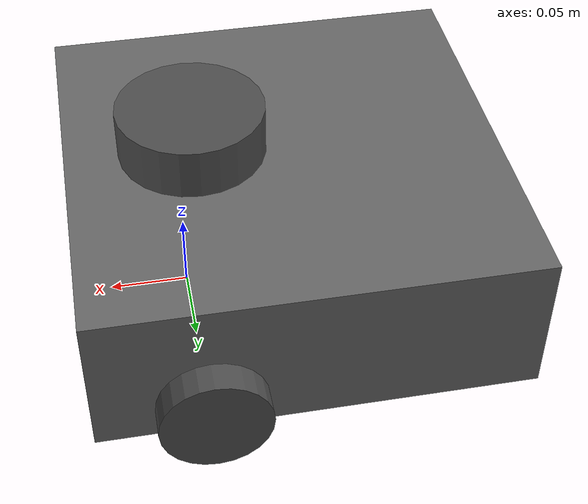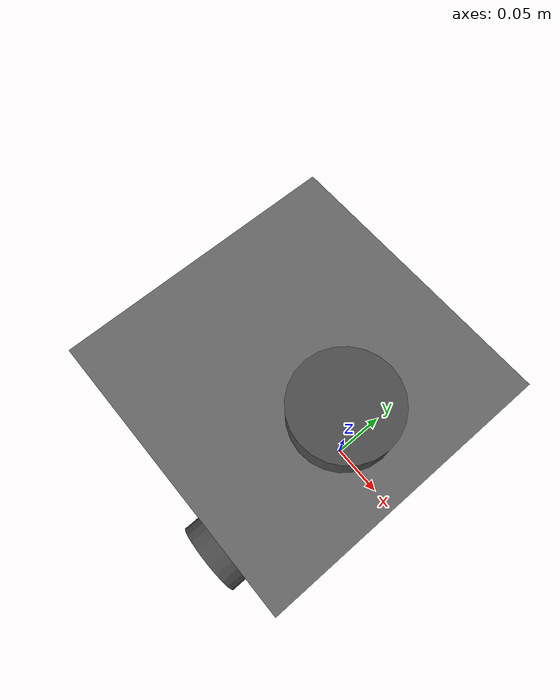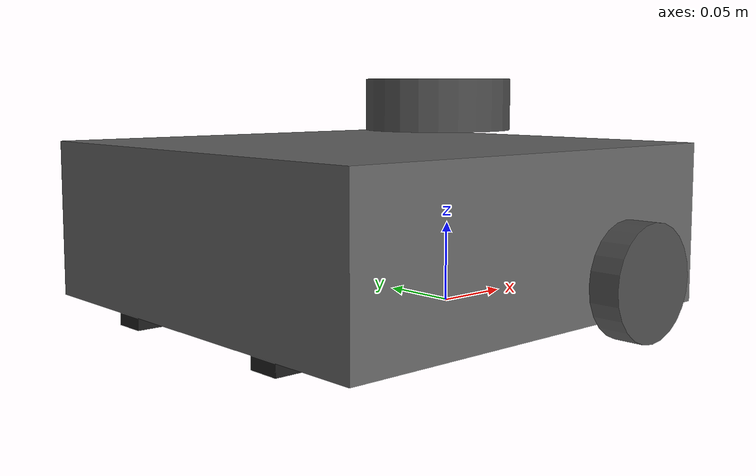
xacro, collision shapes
<?xml version="1.0" ?>
<robot name="turtlebot3_waffle_pi_for_open_manipulator" xmlns:xacro="http://ros.org/wiki/xacro">
  <xacro:include filename="$(find patrol_robot)/urdf/common_properties.xacro"/>
  <xacro:include filename="$(find patrol_robot)/urdf/turtlebot3_waffle_pi_for_open_manipulator.gazebo.xacro"/>

  <link name="base_footprint"/>

  <joint name="base_joint" type="fixed">
    <parent link="base_footprint"/>
    <child link="base_link" />
    <origin xyz="0 0 0.010" rpy="0 0 0"/>
  </joint>

  <link name="base_link">
    <visual>
      <origin xyz="-0.064 0 0.0" rpy="0 0 0"/>
      <geometry>
        <mesh filename="package://patrol_robot/meshes/bases/waffle_pi_base_for_open_manipulator.stl" scale="0.001 0.001 0.001"/>
      </geometry>
      <material name="light_black"/>
    </visual>

    <collision>
      <origin xyz="-0.064 0 0.047" rpy="0 0 0"/>
      <geometry>
        <box size="0.266 0.266 0.094"/>
      </geometry>
    </collision>

    <inertial>
      <origin xyz="0.0 0 0.0" rpy="0 0 0"/>
      <mass value="1.6329594e+00"/>
      <inertia ixx="1.0" ixy="0.0" ixz="0.0"
               iyy="1.0" iyz="0.0"
               izz="1.0" />
      </inertial>
  </link>

  <joint name="wheel_left_joint" type="continuous">
    <parent link="base_link"/>
    <child link="wheel_left_link"/>
    <origin xyz="0.0 0.144 0.023" rpy="-1.57 0 0"/>
    <axis xyz="0 0 1"/>
  </joint>

  <link name="wheel_left_link">
    <visual>
      <origin xyz="0 0 0" rpy="1.57 0 0"/>
      <geometry>
        <mesh filename="package://patrol_robot/meshes/wheels/left_tire.stl" scale="0.001 0.001 0.001"/>
      </geometry>
      <material name="dark"/>
    </visual>

    <collision>
      <origin xyz="0 0 0" rpy="0 0 0"/>
      <geometry>
        <cylinder length="0.018" radius="0.033"/>
      </geometry>
    </collision>

    <inertial>
      <origin xyz="0 0 0" />
      <mass value="2.8498940e-02" />
      <inertia ixx="1.1175580e-05" ixy="-4.2369783e-11" ixz="-5.9381719e-09"
               iyy="1.1192413e-05" iyz="-1.4400107e-11"
               izz="2.0712558e-05" />
      </inertial>
  </link>

  <joint name="wheel_right_joint" type="continuous">
    <parent link="base_link"/>
    <child link="wheel_right_link"/>
    <origin xyz="0.0 -0.144 0.023" rpy="-1.57 0 0"/>
    <axis xyz="0 0 1"/>
  </joint>

  <link name="wheel_right_link">
    <visual>
      <origin xyz="0 0 0" rpy="1.57 0 0"/>
      <geometry>
        <mesh filename="package://patrol_robot/meshes/wheels/right_tire.stl" scale="0.001 0.001 0.001"/>
      </geometry>
      <material name="dark"/>
    </visual>

    <collision>
      <origin xyz="0 0.001 0" rpy="0 0 0"/>
      <geometry>
        <cylinder length="0.018" radius="0.033"/>
      </geometry>
    </collision>

    <inertial>
      <origin xyz="0 0 0" />
      <mass value="2.8498940e-02" />
      <inertia ixx="1.1175580e-05" ixy="-4.2369783e-11" ixz="-5.9381719e-09"
               iyy="1.1192413e-05" iyz="-1.4400107e-11"
               izz="2.0712558e-05" />
      </inertial>
  </link>

  <joint name="caster_back_right_joint" type="fixed">
    <parent link="base_link"/>
    <child link="caster_back_right_link"/>
    <origin xyz="-0.177 -0.064 -0.004" rpy="-1.57 0 0"/>
  </joint>

  <link name="caster_back_right_link">
    <collision>
      <origin xyz="0 0.001 0" rpy="0 0 0"/>
      <geometry>
        <box size="0.030 0.009 0.020"/>
      </geometry>
    </collision>

    <inertial>
      <origin xyz="0 0 0" />
      <mass value="0.005" />
      <inertia ixx="0.001" ixy="0.0" ixz="0.0"
               iyy="0.001" iyz="0.0"
               izz="0.001" />
    </inertial>
  </link>

  <joint name="caster_back_left_joint" type="fixed">
    <parent link="base_link"/>
    <child link="caster_back_left_link"/>
    <origin xyz="-0.177 0.064 -0.004" rpy="-1.57 0 0"/>
  </joint>

  <link name="caster_back_left_link">
    <collision>
      <origin xyz="0 0.001 0" rpy="0 0 0"/>
      <geometry>
        <box size="0.030 0.009 0.020"/>
      </geometry>
    </collision>

    <inertial>
      <origin xyz="0 0 0" />
      <mass value="0.005" />
      <inertia ixx="0.001" ixy="0.0" ixz="0.0"
               iyy="0.001" iyz="0.0"
               izz="0.001" />
    </inertial>
  </link>

  <joint name="imu_joint" type="fixed">
    <parent link="base_link"/>
    <child link="imu_link"/>
    <origin xyz="0.0 0 0.068" rpy="0 0 0"/>
  </joint>

  <link name="imu_link"/>

  <joint name="scan_joint" type="fixed">
    <parent link="base_link"/>
    <child link="base_scan"/>
    <origin xyz="-0.024 0 0.122" rpy="0 0 0"/>
  </joint>

  <link name="base_scan">
    <visual>
      <origin xyz="0 0 0.0" rpy="0 0 0"/>
      <geometry>
        <mesh filename="package://patrol_robot/meshes/sensors/lds.stl" scale="0.001 0.001 0.001"/>
      </geometry>
      <material name="dark"/>
    </visual>

    <collision>
      <origin xyz="0.015 0 -0.0065" rpy="0 0 0"/>
      <geometry>
        <cylinder length="0.0315" radius="0.045"/>
      </geometry>
    </collision>

    <inertial>
      <mass value="0.114" />
      <origin xyz="0 0 0" />
      <inertia ixx="0.001" ixy="0.0" ixz="0.0"
               iyy="0.001" iyz="0.0"
               izz="0.001" />
    </inertial>
  </link>

</robot>

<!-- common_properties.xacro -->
<robot name="xacro_properties" xmlns:xacro="http://ros.org/wiki/xacro">

  <!-- Init colours -->

  <material name="black">
      <color rgba="0.0 0.0 0.0 1.0"/>
  </material>

  <material name="dark">
    <color rgba="0.3 0.3 0.3 1.0"/>
  </material>

  <material name="light_black">
    <color rgba="0.4 0.4 0.4 1.0"/>
  </material>

  <material name="blue">
    <color rgba="0.0 0.0 0.8 1.0"/>
  </material>

  <material name="green">
    <color rgba="0.0 0.8 0.0 1.0"/>
  </material>

  <material name="grey">
    <color rgba="0.5 0.5 0.5 1.0"/>
  </material>

  <material name="orange">
    <color rgba="${255/255} ${108/255} ${10/255} 1.0"/>
  </material>

  <material name="brown">
    <color rgba="${222/255} ${207/255} ${195/255} 1.0"/>
  </material>

  <material name="red">
    <color rgba="0.8 0.0 0.0 1.0"/>
  </material>

  <material name="white">
    <color rgba="1.0 1.0 1.0 1.0"/>
  </material>

</robot>
